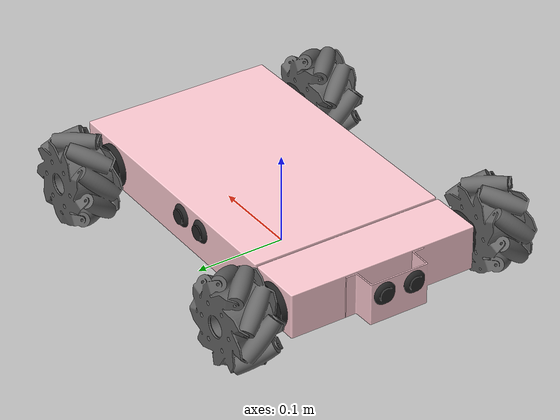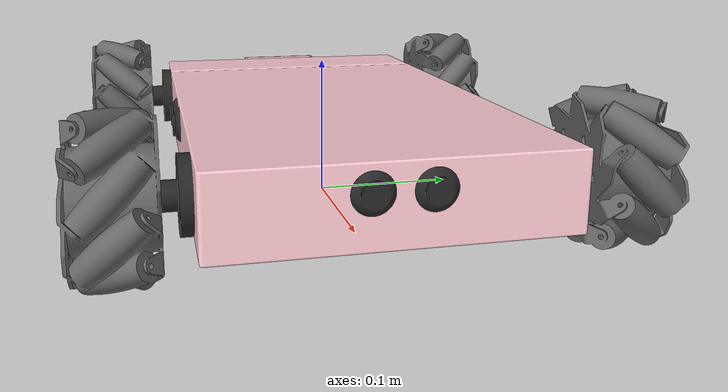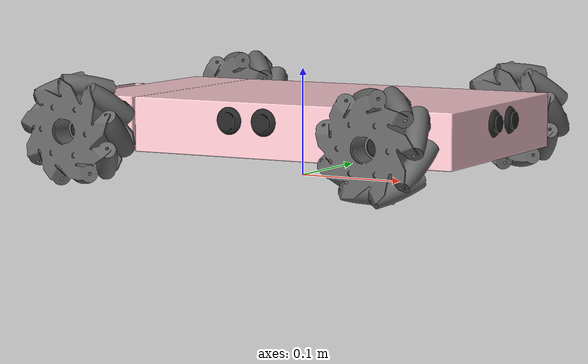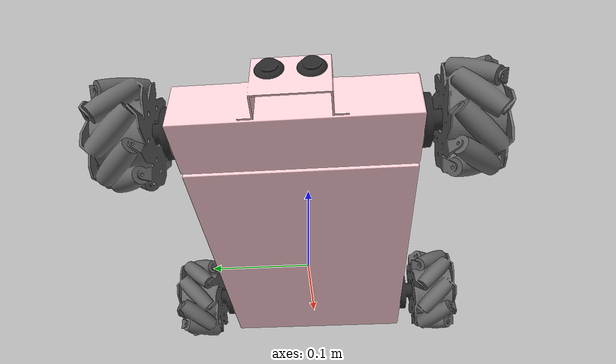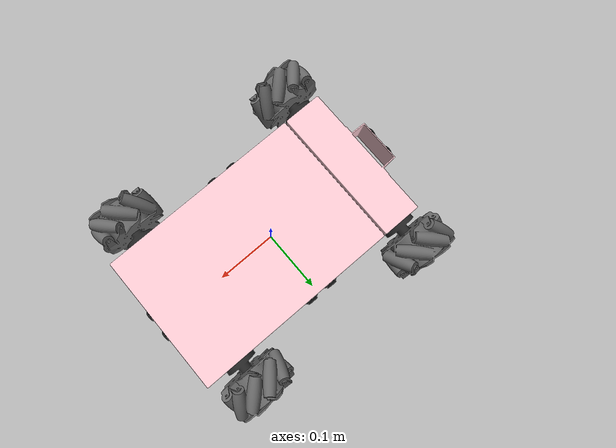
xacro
<?xml version="1.0"?>
<robot name="sml_nexus" xmlns:xacro="http://ros.org/wiki/xacro">

  <xacro:property name="PI" value="3.1415926535897931" />
  <xacro:property name="wheel_radius" value="0.050" />
  <xacro:property name="wheel_width" value="0.0505" />

  <material name="yellow"><color rgba="1. 0.80 0.83 1.0" /></material>
  <material name="black"><color rgba="0.15 0.15 0.15 1.0" /></material>
  <material name="dark_grey"><color rgba="0.2 0.2 0.2 1.0" /></material>
  <material name="light_grey"><color rgba="0.4 0.4 0.4 1.0" /></material>

  <link name="base_link"></link>

  <link name="base_footprint"></link>

  <link name="nexus_body">
    <visual>
      <origin xyz="0 0 0" rpy="0 0 ${PI}" />
      <geometry>
        <mesh filename="file://$(find sml_nexus_description)/description/meshes/nexus_base_link.STL" scale="0.001 0.001 0.001"/>
      </geometry>
      <material name="yellow" />
    </visual>
    <collision>
      <origin xyz="0 0 ${PI}"/>
      <geometry>
        <mesh filename="file://$(find sml_nexus_description)/description/meshes/nexus_base_link_collision.STL" scale="0.001 0.001 0.001"/>
      </geometry>
    </collision>
    <inertial>
      <!-- Inertia from CAD model, filled box assumption -->
      <origin xyz="0.01103 0 0.002" rpy="0 0 ${PI}"/>
      <mass value="2.844"/>
      <inertia
        ixx="0.018819942" ixy="0" ixz="-0.000101519"
        iyy="0.057333716" iyz="0"
        izz="0.074201740"/>
    </inertial>
  </link>

  <joint name="base_link_joint" type="fixed">
    <origin xyz="0 0 0" rpy="0 0 0" />
    <parent link="base_link"/>
    <child link="base_footprint" />
  </joint>

  <joint name="nexus_body_joint" type="fixed">
    <origin xyz="0 0 0.05" rpy="0 0 0" />
    <parent link="base_link"/>
    <child link="nexus_body" />
  </joint>

  <joint name="upper_left_wheel_shaft_joint" type="fixed">
    <origin xyz="0.150 0.108 0.0" rpy="0 0 0" />
    <parent link="nexus_body"/>
    <child link="upper_left_wheel_shaft" />
  </joint>

  <link name="upper_left_wheel_shaft">
    <visual>
      <origin xyz="0 0 0" rpy="0 0 0" />
      <geometry>
        <mesh filename="file://$(find sml_nexus_description)/description/meshes/wheel_shaft.STL" scale="0.001 0.001 0.001"/>
      </geometry>
      <material name="black" />
    </visual>
    <collision>
      <origin xyz="0 0 0"/>
      <geometry>
        <mesh filename="file://$(find sml_nexus_description)/description/meshes/wheel_shaft.STL" scale="0.001 0.001 0.001"/>
      </geometry>
    </collision>
    <inertial>
      <origin xyz="0 0.01221 0" rpy="0 0 0"/>
      <mass value="0.055"/>
      <inertia
        ixx="0.000021370" ixy="0" ixz="0"
        iyy="0.000009966" iyz="0"
        izz="0.000021370"/>
    </inertial>
  </link>

  <joint name="lower_left_wheel_shaft_joint" type="fixed">
    <origin xyz="-0.150 0.108 0.0" rpy="0 0 0" />
    <parent link="nexus_body"/>
    <child link="lower_left_wheel_shaft" />
  </joint>

  <link name="lower_left_wheel_shaft">
    <visual>
      <origin xyz="0 0 0" rpy="0 0 0" />
      <geometry>
        <mesh filename="file://$(find sml_nexus_description)/description/meshes/wheel_shaft.STL" scale="0.001 0.001 0.001"/>
      </geometry>
      <material name="black" />
    </visual>
    <collision>
      <origin xyz="0 0 0"/>
      <geometry>
        <mesh filename="file://$(find sml_nexus_description)/description/meshes/wheel_shaft.STL" scale="0.001 0.001 0.001"/>
      </geometry>
    </collision>
    <inertial>
      <origin xyz="0 0.01221 0" rpy="0 0 0"/>
      <mass value="0.055"/>
      <inertia
        ixx="0.000021370" ixy="0" ixz="0"
        iyy="0.000009966" iyz="0"
        izz="0.000021370"/>
    </inertial>
  </link>

  <joint name="upper_right_wheel_shaft_joint" type="fixed">
    <origin xyz="0.150 -0.108 0.0" rpy="${PI} 0 0" />
    <parent link="nexus_body"/>
    <child link="upper_right_wheel_shaft" />
  </joint>

  <link name="upper_right_wheel_shaft">
    <visual>
      <origin xyz="0 0 0" rpy="0 0 0" />
      <geometry>
        <mesh filename="file://$(find sml_nexus_description)/description/meshes/wheel_shaft.STL" scale="0.001 0.001 0.001"/>
      </geometry>
      <material name="black" />
    </visual>
    <collision>
      <origin xyz="0 0 0"/>
      <geometry>
        <mesh filename="file://$(find sml_nexus_description)/description/meshes/wheel_shaft.STL" scale="0.001 0.001 0.001"/>
      </geometry>
    </collision>
    <inertial>
      <origin xyz="0 0.01221 0" rpy="0 0 0"/>
      <mass value="0.055"/>
      <inertia
        ixx="0.000021370" ixy="0" ixz="0"
        iyy="0.000009966" iyz="0"
        izz="0.000021370"/>
    </inertial>
  </link>

  <joint name="lower_right_wheel_shaft_joint" type="fixed">
    <origin xyz="-0.150 -0.108 0.0" rpy="${PI} 0 0" />
    <parent link="nexus_body"/>
    <child link="lower_right_wheel_shaft" />
  </joint>

  <link name="lower_right_wheel_shaft">
    <visual>
      <origin xyz="0 0 0" rpy="0 0 0" />
      <geometry>
        <mesh filename="file://$(find sml_nexus_description)/description/meshes/wheel_shaft.STL" scale="0.001 0.001 0.001"/>
      </geometry>
      <material name="black" />
    </visual>
    <collision>
      <origin xyz="0 0 0"/>
      <geometry>
        <mesh filename="file://$(find sml_nexus_description)/description/meshes/wheel_shaft.STL" scale="0.001 0.001 0.001"/>
      </geometry>
    </collision>
    <inertial>
      <origin xyz="0 0.01221 0" rpy="0 0 0"/>
      <mass value="0.055"/>
      <inertia
        ixx="0.000021370" ixy="0" ixz="0"
        iyy="0.000009966" iyz="0"
        izz="0.000021370"/>
    </inertial>
  </link>

  <joint name="upper_left_wheel_joint" type="continuous">
    <origin xyz="0 0.042 0" rpy="0 0 0" />
    <parent link="upper_left_wheel_shaft"/>
    <child link="upper_left_wheel" />
    <axis xyz="0 1 0"/>
  </joint>

  <link name="upper_left_wheel">
    <visual>
      <origin xyz="0 0 0" rpy="0 0 0" />
      <geometry>
        <mesh filename="file://$(find sml_nexus_description)/description/meshes/mecanum_wheel_left.STL" scale="0.001 0.001 0.001"/>
      </geometry>
      <material name="light_grey" />
    </visual>
    <collision>
      <origin xyz="0 0 0" rpy="${PI/2} 0 0"/>
      <geometry>
        <cylinder radius="${wheel_radius}" length="${wheel_width}"/>
      </geometry>
    </collision>
    <inertial>
      <origin xyz="0.0 0.0 0.0" rpy="0 0 0"/>
      <mass value="0.3844"/>
      <!-- Inertia based on cylinder -->
      <inertia
        ixx="0.000324824" ixy="0" ixz="0"
        iyy="0.000480000" iyz="0"
        izz="0.000324824"/>
    </inertial>
  </link>

  <joint name="lower_left_wheel_joint" type="continuous">
    <origin xyz="0 0.042 0" rpy="0 0 0" />
    <parent link="lower_left_wheel_shaft"/>
    <child link="lower_left_wheel" />
    <axis xyz="0 1 0"/>
  </joint>

  <link name="lower_left_wheel">
    <visual>
      <origin xyz="0 0 0" rpy="0 0 0" />
      <geometry>
        <mesh filename="file://$(find sml_nexus_description)/description/meshes/mecanum_wheel_right.STL" scale="0.001 0.001 0.001"/>
      </geometry>
      <material name="light_grey" />
    </visual>
    <collision>
      <origin xyz="0 0 0" rpy="${PI/2} 0 0"/>
      <geometry>
        <cylinder radius="${wheel_radius}" length="${wheel_width}"/>
      </geometry>
    </collision>
    <inertial>
      <origin xyz="0.0 0.0 0.0" rpy="0 0 0"/>
      <mass value="0.3844"/>
      <!-- Inertia based on cylinder -->
      <inertia
        ixx="0.000324824" ixy="0" ixz="0"
        iyy="0.000480000" iyz="0"
        izz="0.000324824"/>
    </inertial>
  </link>

  <joint name="upper_right_wheel_joint" type="continuous">
    <origin xyz="0 0.042 0" rpy="0 0 0" />
    <parent link="upper_right_wheel_shaft"/>
    <child link="upper_right_wheel" />
    <axis xyz="0 1 0"/>
  </joint>

  <link name="upper_right_wheel">
    <visual>
      <origin xyz="0 0 0" rpy="0 0 0" />
      <geometry>
        <mesh filename="file://$(find sml_nexus_description)/description/meshes/mecanum_wheel_right.STL" scale="0.001 0.001 0.001"/>
      </geometry>
      <material name="light_grey" />
    </visual>
    <collision>
      <origin xyz="0 0 0" rpy="${PI/2} 0 0"/>
      <geometry>
        <cylinder radius="${wheel_radius}" length="${wheel_width}"/>
      </geometry>
    </collision>
    <inertial>
      <origin xyz="0.0 0.0 0.0" rpy="0 0 0"/>
      <mass value="0.3844"/>
      <!-- Inertia based on cylinder -->
      <inertia
        ixx="0.000324824" ixy="0" ixz="0"
        iyy="0.000480000" iyz="0"
        izz="0.000324824"/>
    </inertial>
  </link>

  <joint name="lower_right_wheel_joint" type="continuous">
    <origin xyz="0 0.042 0" rpy="0 0 0" />
    <parent link="lower_right_wheel_shaft"/>
    <child link="lower_right_wheel" />
    <axis xyz="0 1 0"/>
  </joint>

  <link name="lower_right_wheel">
    <visual>
      <origin xyz="0 0 0" rpy="0 0 0" />
      <geometry>
        <mesh filename="file://$(find sml_nexus_description)/description/meshes/mecanum_wheel_left.STL" scale="0.001 0.001 0.001"/>
      </geometry>
      <material name="light_grey" />
    </visual>
    <collision>
      <origin xyz="0 0 0" rpy="${PI/2} 0 0"/>
      <geometry>
        <cylinder radius="${wheel_radius}" length="${wheel_width}"/>
      </geometry>
    </collision>
    <inertial>
      <origin xyz="0.0 0.0 0.0" rpy="0 0 0"/>
      <mass value="0.3844"/>
      <!-- Inertia based on cylinder -->
      <inertia
        ixx="0.000324824" ixy="0" ixz="0"
        iyy="0.000480000" iyz="0"
        izz="0.000324824"/>
    </inertial>
  </link>

  <joint name="left_sensor_joint" type="fixed">
    <origin xyz="0 0.108 0.010" rpy="0 0 ${PI/2}" />
    <parent link="nexus_body"/>
    <child link="left_sensor" />
  </joint>

  <link name="left_sensor">
    <visual>
      <origin xyz="0 0 0" rpy="${PI/2} 0 0" />
      <geometry>
        <mesh filename="file://$(find sml_nexus_description)/description/meshes/urm04.STL" scale="0.001 0.001 0.001"/>
      </geometry>
      <material name="black" />
    </visual>
  </link>

  <joint name="front_sensor_joint" type="fixed">
    <origin xyz="0.201 0 0.010" rpy="0 0 0" />
    <parent link="nexus_body"/>
    <child link="front_sensor" />
  </joint>

  <link name="front_sensor">
    <visual>
      <origin xyz="0 0 0" rpy="${PI/2} 0 0" />
      <geometry>
        <mesh filename="file://$(find sml_nexus_description)/description/meshes/urm04.STL" scale="0.001 0.001 0.001"/>
      </geometry>
      <material name="black" />
    </visual>
  </link>

  <joint name="right_sensor_joint" type="fixed">
    <origin xyz="0 -0.108 0.010" rpy="0 0 ${-PI/2}" />
    <parent link="nexus_body"/>
    <child link="right_sensor" />
  </joint>

  <link name="right_sensor">
    <visual>
      <origin xyz="0 0 0" rpy="${PI/2} 0 0" />
      <geometry>
        <mesh filename="file://$(find sml_nexus_description)/description/meshes/urm04.STL" scale="0.001 0.001 0.001"/>
      </geometry>
      <material name="black" />
    </visual>
  </link>

  <joint name="rear_sensor_joint" type="fixed">
    <origin xyz="-0.205 0 0.010" rpy="0 0 ${PI}" />
    <parent link="nexus_body"/>
    <child link="rear_sensor" />
  </joint>

  <link name="rear_sensor">
    <visual>
      <origin xyz="0 0 0" rpy="${PI/2} 0 0" />
      <geometry>
        <mesh filename="file://$(find sml_nexus_description)/description/meshes/urm04.STL" scale="0.001 0.001 0.001"/>
      </geometry>
      <material name="black" />
    </visual>
  </link>

  <xacro:arg name="namespace" default="None" />
  <xacro:include filename="sml_nexus.gazebo.xacro" />
  <xacro:nexus namespace="$(arg namespace)"/>

  <!-- Include URM04 ultrasonic range finders -->
  <xacro:include filename="$(find sml_nexus_description)/description/urdf/urm04_sensor.xacro"/>
  <!-- front sensor -->
  <xacro:urm04_sensor frame_name="front_sensor" ros_topic="front_sensor" update_rate="10" min_range="0.04" max_range="2.5" horizontal_field_of_view="1.04" vertical_field_of_view="0.04" ray_count="2" namespace="$(arg namespace)" />
  <!-- left sensor -->
  <xacro:urm04_sensor frame_name="left_sensor" ros_topic="left_sensor" update_rate="10" min_range="0.04" max_range="2.5" horizontal_field_of_view="1.04" vertical_field_of_view="0.04" ray_count="2" namespace="$(arg namespace)" />
  <!-- right sensor -->
  <xacro:urm04_sensor frame_name="right_sensor" ros_topic="right_sensor" update_rate="10" min_range="0.04" max_range="2.5" horizontal_field_of_view="1.04" vertical_field_of_view="0.04" ray_count="2" namespace="$(arg namespace)" />
  <!-- rear sensor -->
  <xacro:urm04_sensor frame_name="rear_sensor" ros_topic="rear_sensor" update_rate="10" min_range="0.04" max_range="2.5" horizontal_field_of_view="1.04" vertical_field_of_view="0.04" ray_count="2" namespace="$(arg namespace)"/>

</robot>
